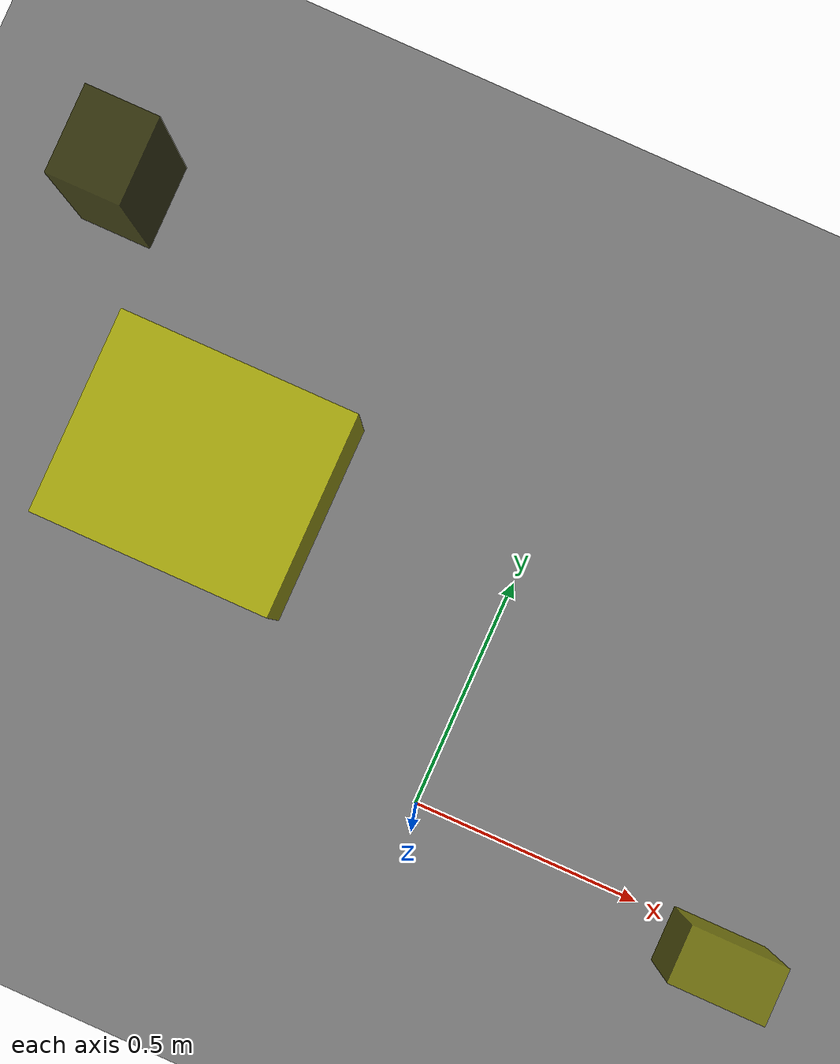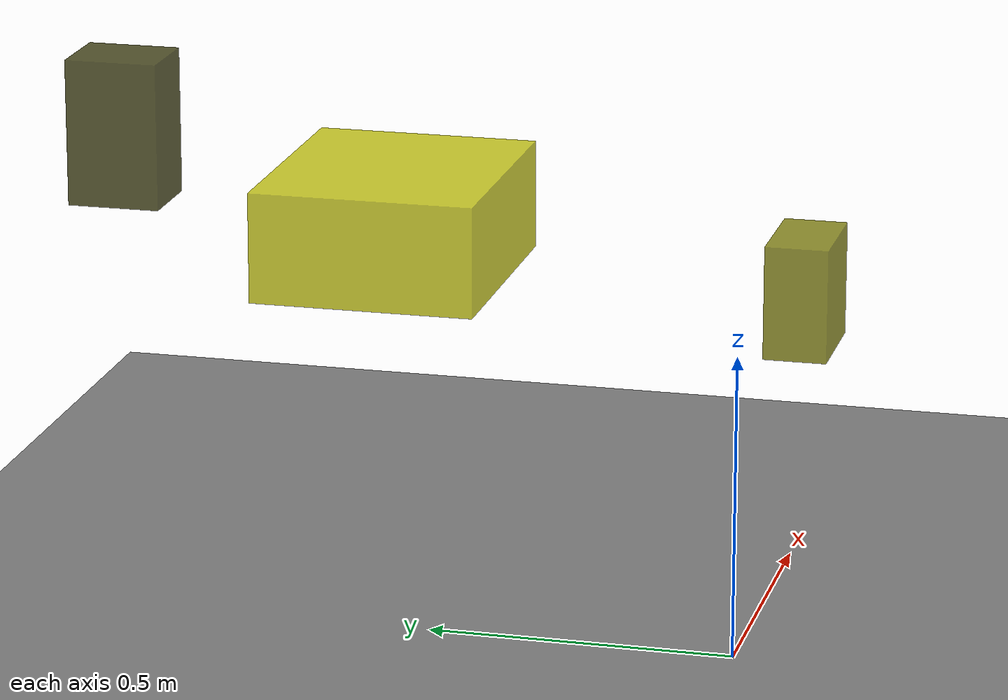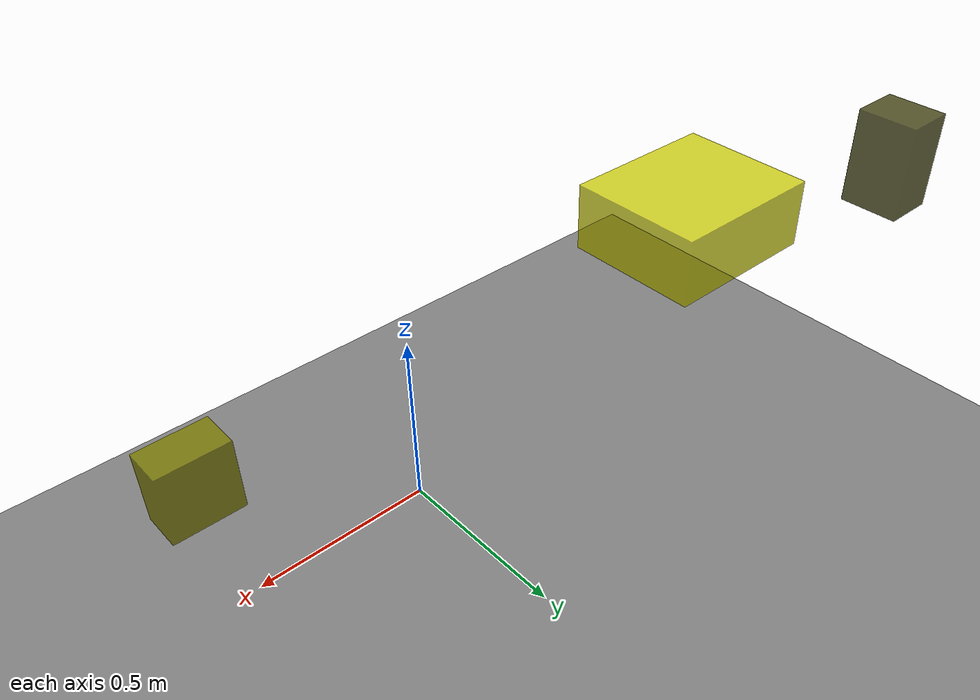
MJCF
<?xml version="1.0"?>
<mujoco model="obstacle_scene">
  <compiler angle="radian" coordinate="local"/>
  <option timestep="0.001" gravity="0 0 -9.81"/>

  <asset>
    <material name="obstacle_mat" rgba="0.8 0.8 0.0 0.8"/>
    <material name="ground_mat" rgba="0.5 0.5 0.5 1"/>
  </asset>

  <worldbody>
    <!-- Ground plane -->
    <geom name="ground" type="plane" size="3 3 0.1" material="ground_mat"/>

    <!-- Obstacles -->
    <body name="obstacle_0" pos="-0.771532 0.739203 1.020485">
      <geom name="obs_0" type="box" size="0.055285 0.066088 0.104779" rgba="0.2 0.2 0.0 0.8"/>
    </body>
    <body name="obstacle_1" pos="0.597822 0.000561 0.436694">
      <geom name="obs_1" type="box" size="0.091595 0.054000 0.097881" rgba="0.5 0.5 0.0 0.8"/>
    </body>
    <body name="obstacle_2" pos="-0.525840 0.410633 0.837409">
      <geom name="obs_2" type="box" size="0.192241 0.164620 0.081298" rgba="0.8 0.8 0.0 0.8"/>
    </body>
  </worldbody>
</mujoco>
